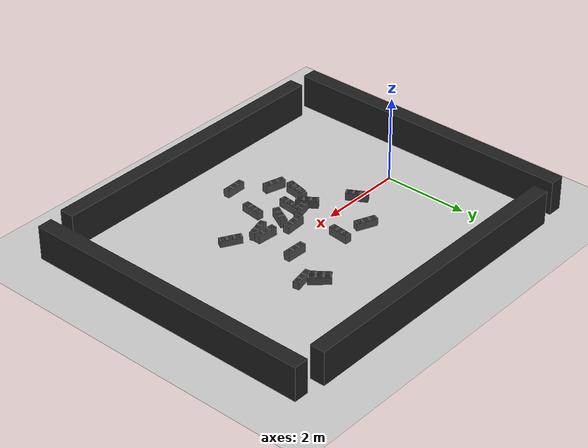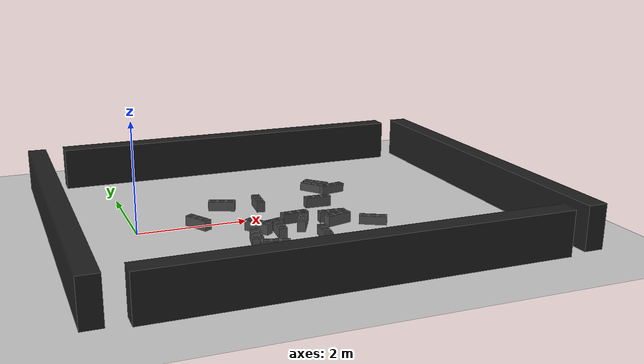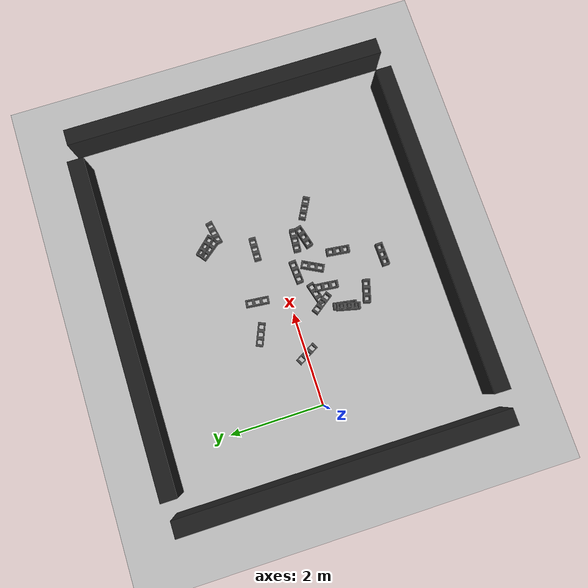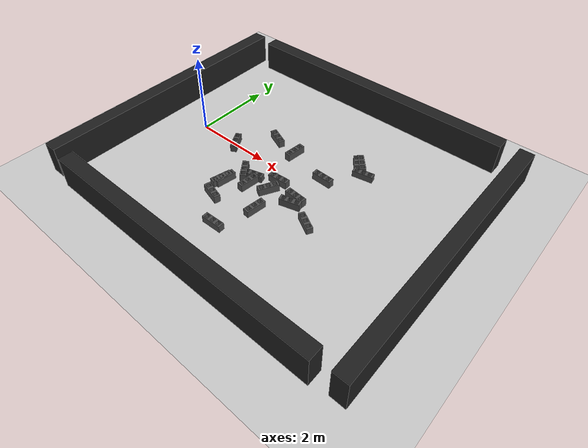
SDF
<sdf version="1.6">
 <world name="default">
  <plugin name="xbot2_clock" filename="libxbot2_gz_clock.so"/>
  <gravity>0 0 -9.81</gravity>
  <model name="ground_plane">
   <static>1</static>
   <link name="link">
    <collision name="collision">
     <geometry><plane><normal>0 0 1</normal><size>100 100</size></plane></geometry>
     <surface><friction><ode><mu>1</mu><mu2>1</mu2></ode></friction></surface>
    </collision>
    <visual name="visual">
     <cast_shadows>0</cast_shadows>
     <geometry><plane><normal>0 0 1</normal><size>100 100</size></plane></geometry>
     <material>
      <script><uri>file://media/materials/scripts/gazebo.material</uri><name>Gazebo/Grey</name></script>
     </material>
    </visual>
   </link>
  </model>
  <light name="sun" type="directional">
   <pose>0 0 10 0 -0 0</pose>
   <diffuse>0.8 0.8 0.8 1</diffuse>
   <specular>0.2 0.2 0.2 1</specular>
   <attenuation>
    <range>1000</range>
    <constant>0.9</constant>
    <linear>0.01</linear>
    <quadratic>0.001</quadratic>
   </attenuation>
   <direction>-0.5 0.1 -0.9</direction>
  </light>
  <physics name="update_rate" default="0" type="ode">
   <real_time_update_rate>4000</real_time_update_rate>
   <max_step_size>0.00025</max_step_size>
   <max_contacts>5</max_contacts>
   <bullet>
    <solver><iters>100</iters><sor>1.55</sor><type>sequential_impulse</type></solver>
    <constraints>
     <contact_surface_layer>0.2</contact_surface_layer>
     <cfm>0.005</cfm>
     <erp>0.2</erp>
     <split_impulse>1</split_impulse>
     <split_impulse_penetration_threshold>-0.01</split_impulse_penetration_threshold>
    </constraints>
   </bullet>
   <ode>
    <solver>
     <iters>50</iters>
     <sor>1.2</sor>
     <type>quick</type>
     <use_dynamic_moi_rescaling>0</use_dynamic_moi_rescaling>
    </solver>
    <constraints>
     <contact_surface_layer>0.0002</contact_surface_layer>
     <contact_max_correcting_vel>500</contact_max_correcting_vel>
     <cfm>1e-06</cfm>
     <erp>0.3</erp>
    </constraints>
   </ode>
   <real_time_factor>1</real_time_factor>
  </physics>
  <magnetic_field>6e-06 2.3e-05 -4.2e-05</magnetic_field>
  <atmosphere type="adiabatic"/>
  <scene><ambient>0.4 0.4 0.4 1</ambient><background>0.7 0.7 0.7 1</background><shadows>1</shadows></scene>
  <audio><device>default</device></audio>
  <spherical_coordinates>
   <surface_model>EARTH_WGS84</surface_model>
   <latitude_deg>0</latitude_deg>
   <longitude_deg>0</longitude_deg>
   <elevation>0</elevation>
   <heading_deg>0</heading_deg>
  </spherical_coordinates>
  <model name="brick_0">
   <pose>1.784590 0.795706 0.072196 0.000000 0.000000 -0.405034</pose>
   <link name="link">
    <inertial>
     <mass>15.0</mass>
     <inertia>
      <ixx>0.07565625</ixx>
      <ixy>0.0</ixy>
      <ixz>0.0</ixz>
      <iyy>0.340625</iyy>
      <iyz>0.0</iyz>
      <izz>0.33125</izz>
     </inertia>
    </inertial>
    <collision name="collision">
     <geometry><mesh><uri>file://../config/meshes/Brick/Brick.dae</uri></mesh></geometry>
     <max_contacts>100</max_contacts>
     <surface>
      <friction>
       <ode><mu>0.62</mu><mu2>0.6</mu2></ode>
       <torsional><coefficient>1.0</coefficient></torsional>
      </friction>
     </surface>
    </collision>
    <visual name="visual">
     <geometry><mesh><uri>file://../config/meshes/Brick/Brick.dae</uri></mesh></geometry>
     <material>
      <ambient>0.3 0.3 0.3 1</ambient>
      <diffuse>0.3 0.3 0.3 1</diffuse>
      <specular>0 0 0 0</specular>
      <emissive>0 0 0 1</emissive>
     </material>
    </visual>
   </link>
  </model>
  <model name="brick_1">
   <pose>2.835541 -0.689485 0.098025 0.000000 0.000000 -2.052655</pose>
   <link name="link">
    <inertial>
     <mass>15.0</mass>
     <inertia>
      <ixx>0.07565625</ixx>
      <ixy>0.0</ixy>
      <ixz>0.0</ixz>
      <iyy>0.340625</iyy>
      <iyz>0.0</iyz>
      <izz>0.33125</izz>
     </inertia>
    </inertial>
    <collision name="collision">
     <geometry><mesh><uri>file://../config/meshes/Brick/Brick.dae</uri></mesh></geometry>
     <max_contacts>100</max_contacts>
     <surface>
      <friction>
       <ode><mu>0.62</mu><mu2>0.6</mu2></ode>
       <torsional><coefficient>1.0</coefficient></torsional>
      </friction>
     </surface>
    </collision>
    <visual name="visual">
     <geometry><mesh><uri>file://../config/meshes/Brick/Brick.dae</uri></mesh></geometry>
     <material>
      <ambient>0.3 0.3 0.3 1</ambient>
      <diffuse>0.3 0.3 0.3 1</diffuse>
      <specular>0 0 0 0</specular>
      <emissive>0 0 0 1</emissive>
     </material>
    </visual>
   </link>
  </model>
  <model name="brick_2">
   <pose>3.860850 1.305814 0.052287 0.000000 0.000000 2.229597</pose>
   <link name="link">
    <inertial>
     <mass>15.0</mass>
     <inertia>
      <ixx>0.07565625</ixx>
      <ixy>0.0</ixy>
      <ixz>0.0</ixz>
      <iyy>0.340625</iyy>
      <iyz>0.0</iyz>
      <izz>0.33125</izz>
     </inertia>
    </inertial>
    <collision name="collision">
     <geometry><mesh><uri>file://../config/meshes/Brick/Brick.dae</uri></mesh></geometry>
     <max_contacts>100</max_contacts>
     <surface>
      <friction>
       <ode><mu>0.62</mu><mu2>0.6</mu2></ode>
       <torsional><coefficient>1.0</coefficient></torsional>
      </friction>
     </surface>
    </collision>
    <visual name="visual">
     <geometry><mesh><uri>file://../config/meshes/Brick/Brick.dae</uri></mesh></geometry>
     <material>
      <ambient>0.3 0.3 0.3 1</ambient>
      <diffuse>0.3 0.3 0.3 1</diffuse>
      <specular>0 0 0 0</specular>
      <emissive>0 0 0 1</emissive>
     </material>
    </visual>
   </link>
  </model>
  <model name="brick_3">
   <pose>3.562479 0.371037 0.092121 0.000000 0.000000 -0.028944</pose>
   <link name="link">
    <inertial>
     <mass>15.0</mass>
     <inertia>
      <ixx>0.07565625</ixx>
      <ixy>0.0</ixy>
      <ixz>0.0</ixz>
      <iyy>0.340625</iyy>
      <iyz>0.0</iyz>
      <izz>0.33125</izz>
     </inertia>
    </inertial>
    <collision name="collision">
     <geometry><mesh><uri>file://../config/meshes/Brick/Brick.dae</uri></mesh></geometry>
     <max_contacts>100</max_contacts>
     <surface>
      <friction>
       <ode><mu>0.62</mu><mu2>0.6</mu2></ode>
       <torsional><coefficient>1.0</coefficient></torsional>
      </friction>
     </surface>
    </collision>
    <visual name="visual">
     <geometry><mesh><uri>file://../config/meshes/Brick/Brick.dae</uri></mesh></geometry>
     <material>
      <ambient>0.3 0.3 0.3 1</ambient>
      <diffuse>0.3 0.3 0.3 1</diffuse>
      <specular>0 0 0 0</specular>
      <emissive>0 0 0 1</emissive>
     </material>
    </visual>
   </link>
  </model>
  <model name="brick_4">
   <pose>3.487206 -0.506381 0.088753 0.000000 0.000000 3.062344</pose>
   <link name="link">
    <inertial>
     <mass>15.0</mass>
     <inertia>
      <ixx>0.07565625</ixx>
      <ixy>0.0</ixy>
      <ixz>0.0</ixz>
      <iyy>0.340625</iyy>
      <iyz>0.0</iyz>
      <izz>0.33125</izz>
     </inertia>
    </inertial>
    <collision name="collision">
     <geometry><mesh><uri>file://../config/meshes/Brick/Brick.dae</uri></mesh></geometry>
     <max_contacts>100</max_contacts>
     <surface>
      <friction>
       <ode><mu>0.62</mu><mu2>0.6</mu2></ode>
       <torsional><coefficient>1.0</coefficient></torsional>
      </friction>
     </surface>
    </collision>
    <visual name="visual">
     <geometry><mesh><uri>file://../config/meshes/Brick/Brick.dae</uri></mesh></geometry>
     <material>
      <ambient>0.3 0.3 0.3 1</ambient>
      <diffuse>0.3 0.3 0.3 1</diffuse>
      <specular>0 0 0 0</specular>
      <emissive>0 0 0 1</emissive>
     </material>
    </visual>
   </link>
  </model>
  <model name="brick_5">
   <pose>3.002874 -1.313543 0.068277 0.000000 0.000000 1.450737</pose>
   <link name="link">
    <inertial>
     <mass>15.0</mass>
     <inertia>
      <ixx>0.07565625</ixx>
      <ixy>0.0</ixy>
      <ixz>0.0</ixz>
      <iyy>0.340625</iyy>
      <iyz>0.0</iyz>
      <izz>0.33125</izz>
     </inertia>
    </inertial>
    <collision name="collision">
     <geometry><mesh><uri>file://../config/meshes/Brick/Brick.dae</uri></mesh></geometry>
     <max_contacts>100</max_contacts>
     <surface>
      <friction>
       <ode><mu>0.62</mu><mu2>0.6</mu2></ode>
       <torsional><coefficient>1.0</coefficient></torsional>
      </friction>
     </surface>
    </collision>
    <visual name="visual">
     <geometry><mesh><uri>file://../config/meshes/Brick/Brick.dae</uri></mesh></geometry>
     <material>
      <ambient>0.3 0.3 0.3 1</ambient>
      <diffuse>0.3 0.3 0.3 1</diffuse>
      <specular>0 0 0 0</specular>
      <emissive>0 0 0 1</emissive>
     </material>
    </visual>
   </link>
  </model>
  <model name="brick_6">
   <pose>1.791650 -1.148337 0.071655 0.000000 0.000000 1.341420</pose>
   <link name="link">
    <inertial>
     <mass>15.0</mass>
     <inertia>
      <ixx>0.07565625</ixx>
      <ixy>0.0</ixy>
      <ixz>0.0</ixz>
      <iyy>0.340625</iyy>
      <iyz>0.0</iyz>
      <izz>0.33125</izz>
     </inertia>
    </inertial>
    <collision name="collision">
     <geometry><mesh><uri>file://../config/meshes/Brick/Brick.dae</uri></mesh></geometry>
     <max_contacts>100</max_contacts>
     <surface>
      <friction>
       <ode><mu>0.62</mu><mu2>0.6</mu2></ode>
       <torsional><coefficient>1.0</coefficient></torsional>
      </friction>
     </surface>
    </collision>
    <visual name="visual">
     <geometry><mesh><uri>file://../config/meshes/Brick/Brick.dae</uri></mesh></geometry>
     <material>
      <ambient>0.3 0.3 0.3 1</ambient>
      <diffuse>0.3 0.3 0.3 1</diffuse>
      <specular>0 0 0 0</specular>
      <emissive>0 0 0 1</emissive>
     </material>
    </visual>
   </link>
  </model>
  <model name="brick_7">
   <pose>2.346381 -0.838897 0.082404 0.000000 0.000000 -1.674338</pose>
   <link name="link">
    <inertial>
     <mass>15.0</mass>
     <inertia>
      <ixx>0.07565625</ixx>
      <ixy>0.0</ixy>
      <ixz>0.0</ixz>
      <iyy>0.340625</iyy>
      <iyz>0.0</iyz>
      <izz>0.33125</izz>
     </inertia>
    </inertial>
    <collision name="collision">
     <geometry><mesh><uri>file://../config/meshes/Brick/Brick.dae</uri></mesh></geometry>
     <max_contacts>100</max_contacts>
     <surface>
      <friction>
       <ode><mu>0.62</mu><mu2>0.6</mu2></ode>
       <torsional><coefficient>1.0</coefficient></torsional>
      </friction>
     </surface>
    </collision>
    <visual name="visual">
     <geometry><mesh><uri>file://../config/meshes/Brick/Brick.dae</uri></mesh></geometry>
     <material>
      <ambient>0.3 0.3 0.3 1</ambient>
      <diffuse>0.3 0.3 0.3 1</diffuse>
      <specular>0 0 0 0</specular>
      <emissive>0 0 0 1</emissive>
     </material>
    </visual>
   </link>
  </model>
  <model name="brick_8">
   <pose>4.178438 1.107446 0.058374 0.000000 0.000000 0.187798</pose>
   <link name="link">
    <inertial>
     <mass>15.0</mass>
     <inertia>
      <ixx>0.07565625</ixx>
      <ixy>0.0</ixy>
      <ixz>0.0</ixz>
      <iyy>0.340625</iyy>
      <iyz>0.0</iyz>
      <izz>0.33125</izz>
     </inertia>
    </inertial>
    <collision name="collision">
     <geometry><mesh><uri>file://../config/meshes/Brick/Brick.dae</uri></mesh></geometry>
     <max_contacts>100</max_contacts>
     <surface>
      <friction>
       <ode><mu>0.62</mu><mu2>0.6</mu2></ode>
       <torsional><coefficient>1.0</coefficient></torsional>
      </friction>
     </surface>
    </collision>
    <visual name="visual">
     <geometry><mesh><uri>file://../config/meshes/Brick/Brick.dae</uri></mesh></geometry>
     <material>
      <ambient>0.3 0.3 0.3 1</ambient>
      <diffuse>0.3 0.3 0.3 1</diffuse>
      <specular>0 0 0 0</specular>
      <emissive>0 0 0 1</emissive>
     </material>
    </visual>
   </link>
  </model>
  <model name="brick_9">
   <pose>3.504891 -0.706795 0.093606 0.000000 0.000000 0.268769</pose>
   <link name="link">
    <inertial>
     <mass>15.0</mass>
     <inertia>
      <ixx>0.07565625</ixx>
      <ixy>0.0</ixy>
      <ixz>0.0</ixz>
      <iyy>0.340625</iyy>
      <iyz>0.0</iyz>
      <izz>0.33125</izz>
     </inertia>
    </inertial>
    <collision name="collision">
     <geometry><mesh><uri>file://../config/meshes/Brick/Brick.dae</uri></mesh></geometry>
     <max_contacts>100</max_contacts>
     <surface>
      <friction>
       <ode><mu>0.62</mu><mu2>0.6</mu2></ode>
       <torsional><coefficient>1.0</coefficient></torsional>
      </friction>
     </surface>
    </collision>
    <visual name="visual">
     <geometry><mesh><uri>file://../config/meshes/Brick/Brick.dae</uri></mesh></geometry>
     <material>
      <ambient>0.3 0.3 0.3 1</ambient>
      <diffuse>0.3 0.3 0.3 1</diffuse>
      <specular>0 0 0 0</specular>
      <emissive>0 0 0 1</emissive>
     </material>
    </visual>
   </link>
  </model>
  <model name="brick_10">
   <pose>1.107257 -0.003140 0.078168 0.000000 0.000000 2.081557</pose>
   <link name="link">
    <inertial>
     <mass>15.0</mass>
     <inertia>
      <ixx>0.07565625</ixx>
      <ixy>0.0</ixy>
      <ixz>0.0</ixz>
      <iyy>0.340625</iyy>
      <iyz>0.0</iyz>
      <izz>0.33125</izz>
     </inertia>
    </inertial>
    <collision name="collision">
     <geometry><mesh><uri>file://../config/meshes/Brick/Brick.dae</uri></mesh></geometry>
     <max_contacts>100</max_contacts>
     <surface>
      <friction>
       <ode><mu>0.62</mu><mu2>0.6</mu2></ode>
       <torsional><coefficient>1.0</coefficient></torsional>
      </friction>
     </surface>
    </collision>
    <visual name="visual">
     <geometry><mesh><uri>file://../config/meshes/Brick/Brick.dae</uri></mesh></geometry>
     <material>
      <ambient>0.3 0.3 0.3 1</ambient>
      <diffuse>0.3 0.3 0.3 1</diffuse>
      <specular>0 0 0 0</specular>
      <emissive>0 0 0 1</emissive>
     </material>
    </visual>
   </link>
  </model>
  <model name="brick_11">
   <pose>1.984509 -1.615055 0.097432 0.000000 0.000000 -0.276160</pose>
   <link name="link">
    <inertial>
     <mass>15.0</mass>
     <inertia>
      <ixx>0.07565625</ixx>
      <ixy>0.0</ixy>
      <ixz>0.0</ixz>
      <iyy>0.340625</iyy>
      <iyz>0.0</iyz>
      <izz>0.33125</izz>
     </inertia>
    </inertial>
    <collision name="collision">
     <geometry><mesh><uri>file://../config/meshes/Brick/Brick.dae</uri></mesh></geometry>
     <max_contacts>100</max_contacts>
     <surface>
      <friction>
       <ode><mu>0.62</mu><mu2>0.6</mu2></ode>
       <torsional><coefficient>1.0</coefficient></torsional>
      </friction>
     </surface>
    </collision>
    <visual name="visual">
     <geometry><mesh><uri>file://../config/meshes/Brick/Brick.dae</uri></mesh></geometry>
     <material>
      <ambient>0.3 0.3 0.3 1</ambient>
      <diffuse>0.3 0.3 0.3 1</diffuse>
      <specular>0 0 0 0</specular>
      <emissive>0 0 0 1</emissive>
     </material>
    </visual>
   </link>
  </model>
  <model name="brick_12">
   <pose>3.944484 1.371072 0.068612 0.000000 0.000000 2.315193</pose>
   <link name="link">
    <inertial>
     <mass>15.0</mass>
     <inertia>
      <ixx>0.07565625</ixx>
      <ixy>0.0</ixy>
      <ixz>0.0</ixz>
      <iyy>0.340625</iyy>
      <iyz>0.0</iyz>
      <izz>0.33125</izz>
     </inertia>
    </inertial>
    <collision name="collision">
     <geometry><mesh><uri>file://../config/meshes/Brick/Brick.dae</uri></mesh></geometry>
     <max_contacts>100</max_contacts>
     <surface>
      <friction>
       <ode><mu>0.62</mu><mu2>0.6</mu2></ode>
       <torsional><coefficient>1.0</coefficient></torsional>
      </friction>
     </surface>
    </collision>
    <visual name="visual">
     <geometry><mesh><uri>file://../config/meshes/Brick/Brick.dae</uri></mesh></geometry>
     <material>
      <ambient>0.3 0.3 0.3 1</ambient>
      <diffuse>0.3 0.3 0.3 1</diffuse>
      <specular>0 0 0 0</specular>
      <emissive>0 0 0 1</emissive>
     </material>
    </visual>
   </link>
  </model>
  <model name="brick_13">
   <pose>2.638764 -2.197875 0.064487 0.000000 0.000000 -3.115679</pose>
   <link name="link">
    <inertial>
     <mass>15.0</mass>
     <inertia>
      <ixx>0.07565625</ixx>
      <ixy>0.0</ixy>
      <ixz>0.0</ixz>
      <iyy>0.340625</iyy>
      <iyz>0.0</iyz>
      <izz>0.33125</izz>
     </inertia>
    </inertial>
    <collision name="collision">
     <geometry><mesh><uri>file://../config/meshes/Brick/Brick.dae</uri></mesh></geometry>
     <max_contacts>100</max_contacts>
     <surface>
      <friction>
       <ode><mu>0.62</mu><mu2>0.6</mu2></ode>
       <torsional><coefficient>1.0</coefficient></torsional>
      </friction>
     </surface>
    </collision>
    <visual name="visual">
     <geometry><mesh><uri>file://../config/meshes/Brick/Brick.dae</uri></mesh></geometry>
     <material>
      <ambient>0.3 0.3 0.3 1</ambient>
      <diffuse>0.3 0.3 0.3 1</diffuse>
      <specular>0 0 0 0</specular>
      <emissive>0 0 0 1</emissive>
     </material>
    </visual>
   </link>
  </model>
  <model name="brick_14">
   <pose>2.258021 -0.579195 0.056544 0.000000 0.000000 -2.873568</pose>
   <link name="link">
    <inertial>
     <mass>15.0</mass>
     <inertia>
      <ixx>0.07565625</ixx>
      <ixy>0.0</ixy>
      <ixz>0.0</ixz>
      <iyy>0.340625</iyy>
      <iyz>0.0</iyz>
      <izz>0.33125</izz>
     </inertia>
    </inertial>
    <collision name="collision">
     <geometry><mesh><uri>file://../config/meshes/Brick/Brick.dae</uri></mesh></geometry>
     <max_contacts>100</max_contacts>
     <surface>
      <friction>
       <ode><mu>0.62</mu><mu2>0.6</mu2></ode>
       <torsional><coefficient>1.0</coefficient></torsional>
      </friction>
     </surface>
    </collision>
    <visual name="visual">
     <geometry><mesh><uri>file://../config/meshes/Brick/Brick.dae</uri></mesh></geometry>
     <material>
      <ambient>0.3 0.3 0.3 1</ambient>
      <diffuse>0.3 0.3 0.3 1</diffuse>
      <specular>0 0 0 0</specular>
      <emissive>0 0 0 1</emissive>
     </material>
    </visual>
   </link>
  </model>
  <model name="brick_15">
   <pose>2.024333 -0.629843 0.099616 0.000000 0.000000 -0.947802</pose>
   <link name="link">
    <inertial>
     <mass>15.0</mass>
     <inertia>
      <ixx>0.07565625</ixx>
      <ixy>0.0</ixy>
      <ixz>0.0</ixz>
      <iyy>0.340625</iyy>
      <iyz>0.0</iyz>
      <izz>0.33125</izz>
     </inertia>
    </inertial>
    <collision name="collision">
     <geometry><mesh><uri>file://../config/meshes/Brick/Brick.dae</uri></mesh></geometry>
     <max_contacts>100</max_contacts>
     <surface>
      <friction>
       <ode><mu>0.62</mu><mu2>0.6</mu2></ode>
       <torsional><coefficient>1.0</coefficient></torsional>
      </friction>
     </surface>
    </collision>
    <visual name="visual">
     <geometry><mesh><uri>file://../config/meshes/Brick/Brick.dae</uri></mesh></geometry>
     <material>
      <ambient>0.3 0.3 0.3 1</ambient>
      <diffuse>0.3 0.3 0.3 1</diffuse>
      <specular>0 0 0 0</specular>
      <emissive>0 0 0 1</emissive>
     </material>
    </visual>
   </link>
  </model>
  <model name="brick_16">
   <pose>2.461099 0.656601 0.086736 0.000000 0.000000 1.468300</pose>
   <link name="link">
    <inertial>
     <mass>15.0</mass>
     <inertia>
      <ixx>0.07565625</ixx>
      <ixy>0.0</ixy>
      <ixz>0.0</ixz>
      <iyy>0.340625</iyy>
      <iyz>0.0</iyz>
      <izz>0.33125</izz>
     </inertia>
    </inertial>
    <collision name="collision">
     <geometry><mesh><uri>file://../config/meshes/Brick/Brick.dae</uri></mesh></geometry>
     <max_contacts>100</max_contacts>
     <surface>
      <friction>
       <ode><mu>0.62</mu><mu2>0.6</mu2></ode>
       <torsional><coefficient>1.0</coefficient></torsional>
      </friction>
     </surface>
    </collision>
    <visual name="visual">
     <geometry><mesh><uri>file://../config/meshes/Brick/Brick.dae</uri></mesh></geometry>
     <material>
      <ambient>0.3 0.3 0.3 1</ambient>
      <diffuse>0.3 0.3 0.3 1</diffuse>
      <specular>0 0 0 0</specular>
      <emissive>0 0 0 1</emissive>
     </material>
    </visual>
   </link>
  </model>
  <model name="brick_17">
   <pose>4.115004 -0.917569 0.050537 0.000000 0.000000 -0.505285</pose>
   <link name="link">
    <inertial>
     <mass>15.0</mass>
     <inertia>
      <ixx>0.07565625</ixx>
      <ixy>0.0</ixy>
      <ixz>0.0</ixz>
      <iyy>0.340625</iyy>
      <iyz>0.0</iyz>
      <izz>0.33125</izz>
     </inertia>
    </inertial>
    <collision name="collision">
     <geometry><mesh><uri>file://../config/meshes/Brick/Brick.dae</uri></mesh></geometry>
     <max_contacts>100</max_contacts>
     <surface>
      <friction>
       <ode><mu>0.62</mu><mu2>0.6</mu2></ode>
       <torsional><coefficient>1.0</coefficient></torsional>
      </friction>
     </surface>
    </collision>
    <visual name="visual">
     <geometry><mesh><uri>file://../config/meshes/Brick/Brick.dae</uri></mesh></geometry>
     <material>
      <ambient>0.3 0.3 0.3 1</ambient>
      <diffuse>0.3 0.3 0.3 1</diffuse>
      <specular>0 0 0 0</specular>
      <emissive>0 0 0 1</emissive>
     </material>
    </visual>
   </link>
  </model>
  <model name="brick_18">
   <pose>1.841790 -1.086946 0.069490 0.000000 0.000000 1.412754</pose>
   <link name="link">
    <inertial>
     <mass>15.0</mass>
     <inertia>
      <ixx>0.07565625</ixx>
      <ixy>0.0</ixy>
      <ixz>0.0</ixz>
      <iyy>0.340625</iyy>
      <iyz>0.0</iyz>
      <izz>0.33125</izz>
     </inertia>
    </inertial>
    <collision name="collision">
     <geometry><mesh><uri>file://../config/meshes/Brick/Brick.dae</uri></mesh></geometry>
     <max_contacts>100</max_contacts>
     <surface>
      <friction>
       <ode><mu>0.62</mu><mu2>0.6</mu2></ode>
       <torsional><coefficient>1.0</coefficient></torsional>
      </friction>
     </surface>
    </collision>
    <visual name="visual">
     <geometry><mesh><uri>file://../config/meshes/Brick/Brick.dae</uri></mesh></geometry>
     <material>
      <ambient>0.3 0.3 0.3 1</ambient>
      <diffuse>0.3 0.3 0.3 1</diffuse>
      <specular>0 0 0 0</specular>
      <emissive>0 0 0 1</emissive>
     </material>
    </visual>
   </link>
  </model>
  <model name="brick_19">
   <pose>2.824766 -0.319884 0.079437 0.000000 0.000000 0.061637</pose>
   <link name="link">
    <inertial>
     <mass>15.0</mass>
     <inertia>
      <ixx>0.07565625</ixx>
      <ixy>0.0</ixy>
      <ixz>0.0</ixz>
      <iyy>0.340625</iyy>
      <iyz>0.0</iyz>
      <izz>0.33125</izz>
     </inertia>
    </inertial>
    <collision name="collision">
     <geometry><mesh><uri>file://../config/meshes/Brick/Brick.dae</uri></mesh></geometry>
     <max_contacts>100</max_contacts>
     <surface>
      <friction>
       <ode><mu>0.62</mu><mu2>0.6</mu2></ode>
       <torsional><coefficient>1.0</coefficient></torsional>
      </friction>
     </surface>
    </collision>
    <visual name="visual">
     <geometry><mesh><uri>file://../config/meshes/Brick/Brick.dae</uri></mesh></geometry>
     <material>
      <ambient>0.3 0.3 0.3 1</ambient>
      <diffuse>0.3 0.3 0.3 1</diffuse>
      <specular>0 0 0 0</specular>
      <emissive>0 0 0 1</emissive>
     </material>
    </visual>
   </link>
  </model>
  <model name="wall_0">
   <pose>-1.300000 0.000000 0.4 0 0 0.000000</pose>
   <link name="link">
    <inertial>
     <mass>10000.0</mass>
     <inertia><ixx>166.7</ixx><ixy>0</ixy><ixz>0</ixz><iyy>166.7</iyy><iyz>0</iyz><izz>166.7</izz></inertia>
    </inertial>
    <collision name="collision">
     <geometry><box><size>0.350000 6.950000 0.8</size></box></geometry>
     <surface>
      <friction>
       <ode><mu>0.62</mu><mu2>0.6</mu2></ode>
       <torsional><coefficient>1.0</coefficient></torsional>
      </friction>
     </surface>
    </collision>
    <visual name="visual">
     <geometry><box><size>0.350000 6.950000 0.8</size></box></geometry>
     <material>
      <script><name>Gazebo/FlatBlack</name><uri>file://media/materials/scripts/gazebo.material</uri></script>
     </material>
    </visual>
   </link>
  </model>
  <model name="wall_1">
   <pose>6.900000 0.000000 0.4 0 0 0.000000</pose>
   <link name="link">
    <inertial>
     <mass>10000.0</mass>
     <inertia><ixx>166.7</ixx><ixy>0</ixy><ixz>0</ixz><iyy>166.7</iyy><iyz>0</iyz><izz>166.7</izz></inertia>
    </inertial>
    <collision name="collision">
     <geometry><box><size>0.350000 6.950000 0.8</size></box></geometry>
     <surface>
      <friction>
       <ode><mu>0.62</mu><mu2>0.6</mu2></ode>
       <torsional><coefficient>1.0</coefficient></torsional>
      </friction>
     </surface>
    </collision>
    <visual name="visual">
     <geometry><box><size>0.350000 6.950000 0.8</size></box></geometry>
     <material>
      <script><name>Gazebo/FlatBlack</name><uri>file://media/materials/scripts/gazebo.material</uri></script>
     </material>
    </visual>
   </link>
  </model>
  <model name="wall_2">
   <pose>2.800000 -3.400000 0.4 0 0 0.000000</pose>
   <link name="link">
    <inertial>
     <mass>10000.0</mass>
     <inertia><ixx>166.7</ixx><ixy>0</ixy><ixz>0</ixz><iyy>166.7</iyy><iyz>0</iyz><izz>166.7</izz></inertia>
    </inertial>
    <collision name="collision">
     <geometry><box><size>7.150000 0.350000 0.8</size></box></geometry>
     <surface>
      <friction>
       <ode><mu>0.62</mu><mu2>0.6</mu2></ode>
       <torsional><coefficient>1.0</coefficient></torsional>
      </friction>
     </surface>
    </collision>
    <visual name="visual">
     <geometry><box><size>7.150000 0.350000 0.8</size></box></geometry>
     <material>
      <script><name>Gazebo/FlatBlack</name><uri>file://media/materials/scripts/gazebo.material</uri></script>
     </material>
    </visual>
   </link>
  </model>
  <model name="wall_3">
   <pose>2.800000 3.400000 0.4 0 0 0.000000</pose>
   <link name="link">
    <inertial>
     <mass>10000.0</mass>
     <inertia><ixx>166.7</ixx><ixy>0</ixy><ixz>0</ixz><iyy>166.7</iyy><iyz>0</iyz><izz>166.7</izz></inertia>
    </inertial>
    <collision name="collision">
     <geometry><box><size>7.150000 0.350000 0.8</size></box></geometry>
     <surface>
      <friction>
       <ode><mu>0.62</mu><mu2>0.6</mu2></ode>
       <torsional><coefficient>1.0</coefficient></torsional>
      </friction>
     </surface>
    </collision>
    <visual name="visual">
     <geometry><box><size>7.150000 0.350000 0.8</size></box></geometry>
     <material>
      <script><name>Gazebo/FlatBlack</name><uri>file://media/materials/scripts/gazebo.material</uri></script>
     </material>
    </visual>
   </link>
  </model>
 </world>
</sdf>
